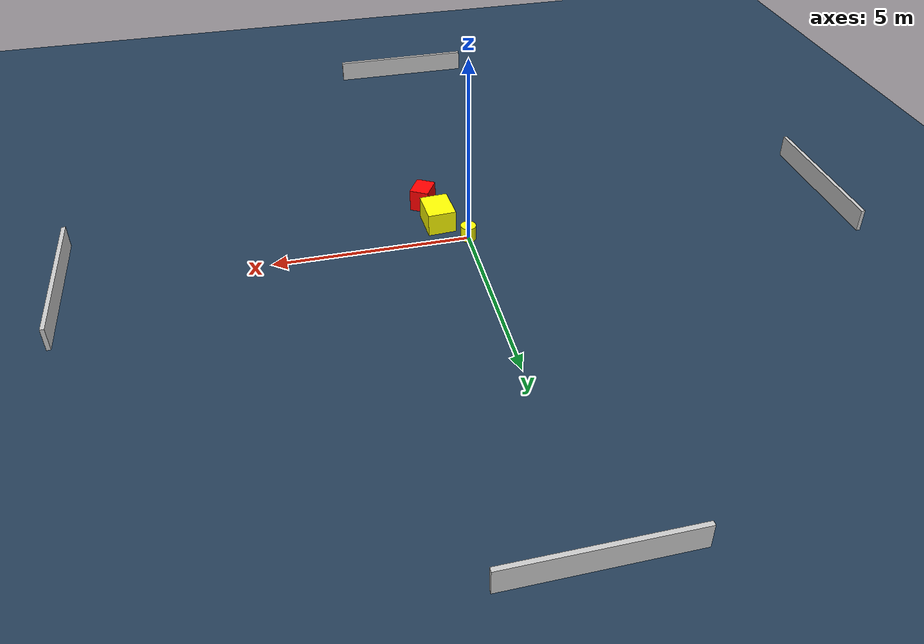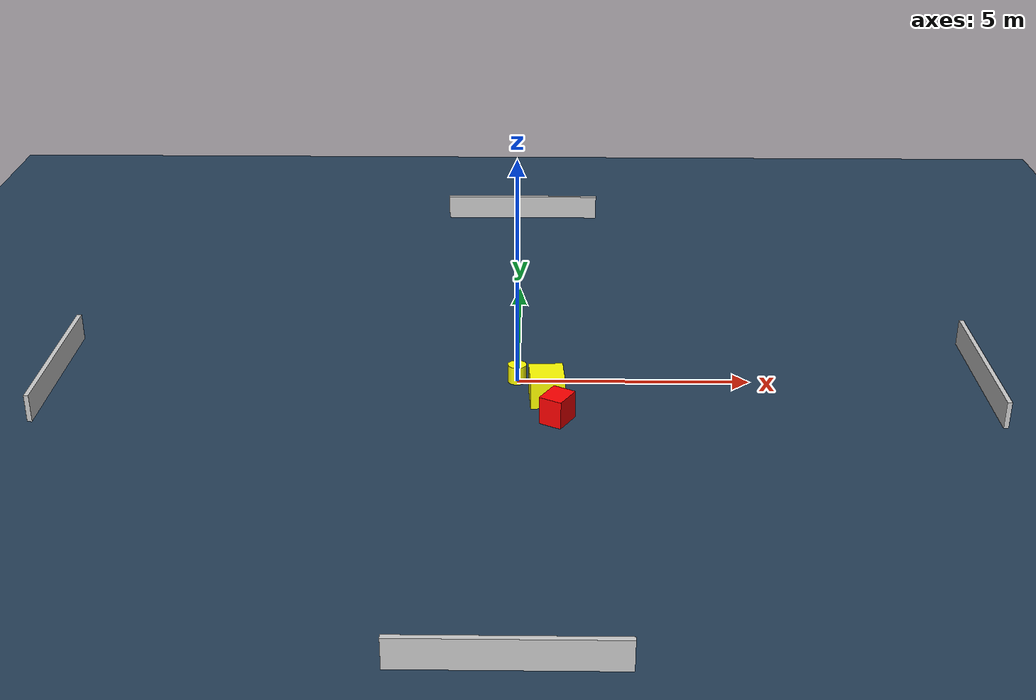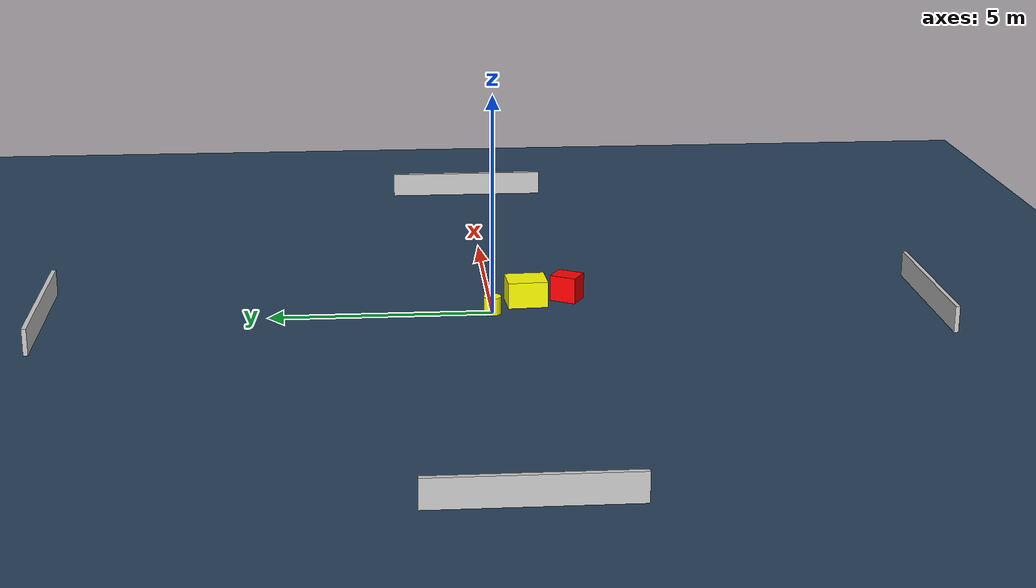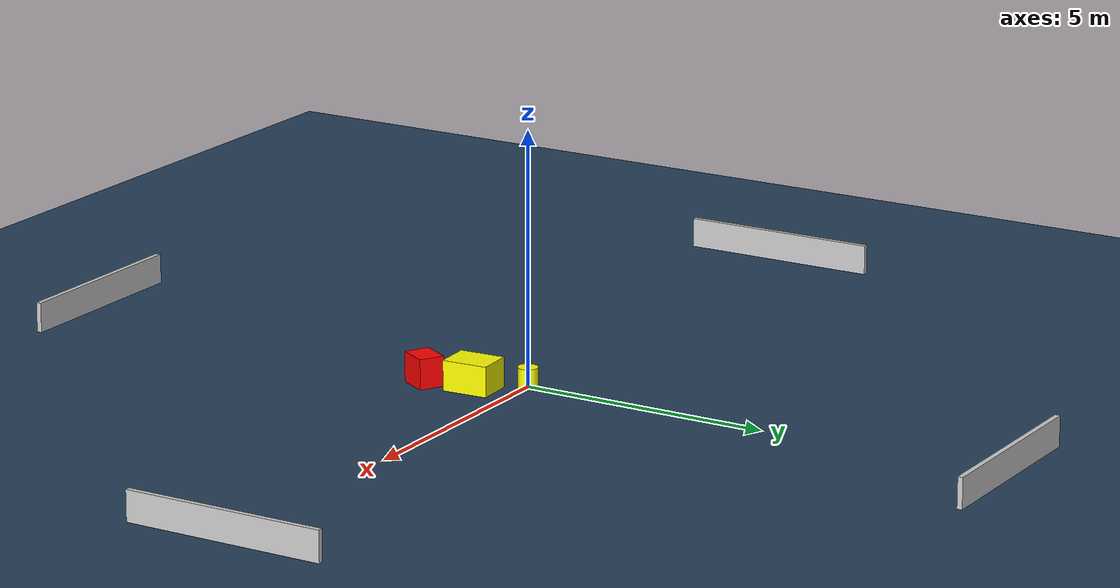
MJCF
<?xml version="1.0" ?>
<mujoco model="generated_environment">
  <option timestep="0.01" integrator="RK4" cone="elliptic"/>
  <default>
    <geom density="1"/>
  </default>
  <asset>
    <texture builtin="gradient" height="3072" name="skybox" rgb1="0.3 0.5 0.7" rgb2="0 0 0" type="skybox" width="512"/>
    <texture builtin="checker" height="300" name="groundplane" rgb1="0.2 0.3 0.4" rgb2="0.1 0.2 0.3" type="2d" width="300"/>
    <material name="groundplane" reflectance="0.2" texrepeat="5 5" texture="groundplane"/>
  </asset>
  <worldbody>
    <light dir="0 0 -1" directional="true" pos="0 0 1.5"/>
    <geom condim="3" friction="0.5 0.005 0.001" material="groundplane" name="floor" pos="0 0 0" size="0 0 0.05" type="plane"/>
    <body name="walls">
      <geom name="wall_1" condim="4" pos="-10.0 0.0 0.3" rgba="0.800000011920929 0.800000011920929 0.800000011920929 1.0" size="0.05 2.0 0.3" type="box"/>
      <geom name="wall_2" condim="4" pos="10.0 0.0 0.3" rgba="0.800000011920929 0.800000011920929 0.800000011920929 1.0" size="0.05 2.0 0.3" type="box"/>
      <geom name="wall_3" condim="4" pos="0.0 -10.0 0.3" rgba="0.800000011920929 0.800000011920929 0.800000011920929 1.0" size="2.0 0.05 0.3" type="box"/>
      <geom name="wall_4" condim="4" pos="0.0 10.0 0.3" rgba="0.800000011920929 0.800000011920929 0.800000011920929 1.0" size="2.0 0.05 0.3" type="box"/>
    </body>
    <body name="robot">
      <joint name="joint_x" type="slide" pos="0 0 0" axis="1 0 0"/>
      <joint name="joint_y" type="slide" pos="0 0 0" axis="0 1 0"/>
      <geom name="robot" type="cylinder" pos="0.0 0.0 0.2" size="0.2 0.2 0.0" mass="5.0" friction="1.0 0.005 0.0001" condim="4" rgba="1.0 1.0 0.0 1.0"/>
    </body>
    <body name="obstacle_1_movable">
      <geom name="obstacle_1_movable" condim="4" pos="0.6345007334886003 -0.8148257343254532 0.3" euler="0 0 273.2272910067958" friction="0.0 0.005 0.001" rgba="1.0 1.0 0.0 1.0" size="0.45693584980852703 0.36371880607052653 0.3" type="box" mass="0.1"/>
      <joint type="free"/>
    </body>
    <body name="obstacle_2_static">
      <geom name="obstacle_2_static" condim="4" pos="0.8485202750560297 -1.7762859691202129 0.3" euler="0 0 60.13403692119209" friction="0.0 0.005 0.001" rgba="1.0 0.0 0.0 1.0" size="0.30779710366903973 0.2540825227681155 0.3" type="box"/>
    </body>
  </worldbody>
  <actuator>
    <motor name="actuator_x" joint="joint_x" gear="1" ctrlrange="-1 1"/>
    <motor name="actuator_y" joint="joint_y" gear="1" ctrlrange="-1 1"/>
  </actuator>
</mujoco>
